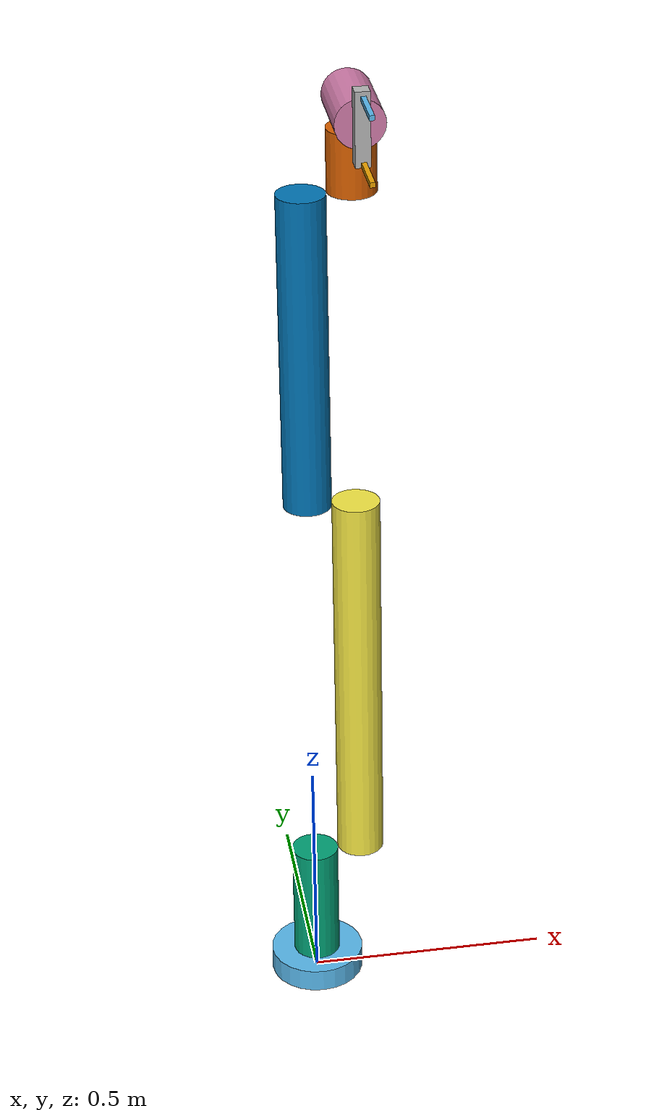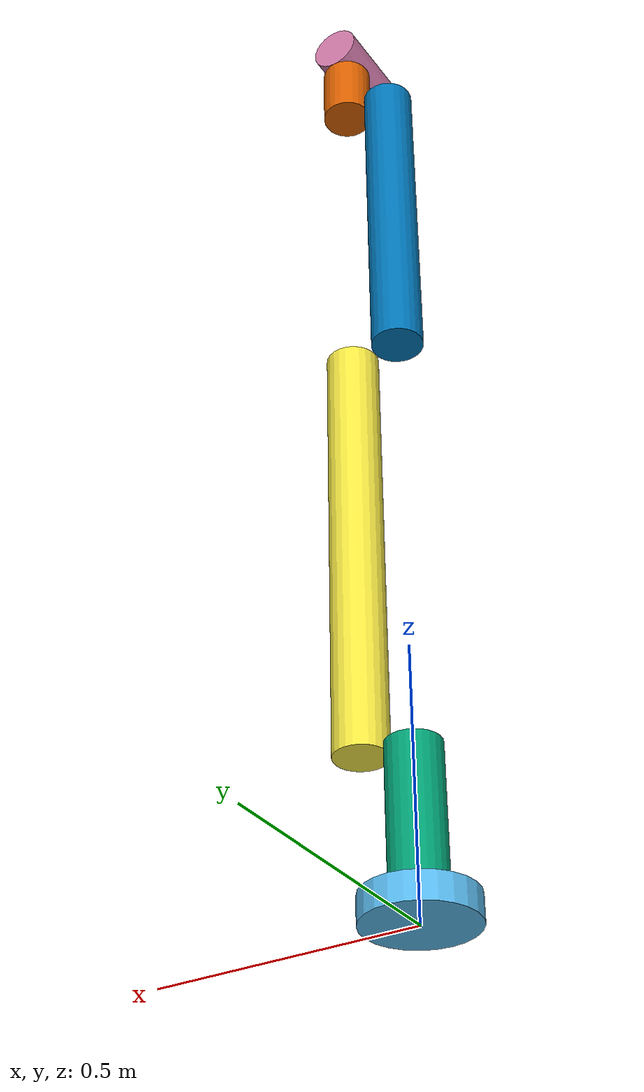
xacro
<?xml version="1.0"?>
<!-- robot_arm.xacro -->
<robot name="robot_arm" xmlns:xacro="http://ros.org/wiki/xacro">
  <xacro:include filename="robot_arm_macros.xacro"/>
  <xacro:include filename="gripper.xacro"/>

  <!-- ====== WORLD LINK ====== -->
  <link name="world"/>

  <!-- ====== FIX ROBOT TO WORLD ====== -->
  <xacro:cobot_joint
    name="world_base_link"
    type="fixed"
    parent="world"
    child="base_link"
    axis="0 0 0"
    limit_l="0"
    limit_u="0"
    limit_v="0"
    limit_e="0"
    origin_xyz="0 0 0"
    origin_rpy="0 0 0"/>

  <!-- ====== ARM LINKS ====== -->

  <!-- Base link -->
  <xacro:link_cylinder
    name="base_link"
    xyz="0 0 0.025"
    rpy="0 0 0"
    radius="0.1"
    length="0.05"
    mass="1.0"
    ixx="0.00270833"
    iyy="0.00270833"
    izz="0.005"/>

  <!-- Link 1 -->
  <xacro:link_cylinder
    name="link1"
    xyz="0 0 0.132"
    rpy="0 0 0"
    radius="0.05"
    length="0.264"
    mass="0.6"
    ixx="0.005808"
    iyy="0.005808"
    izz="0.00075"/>

  <!-- Link 2 -->
  <xacro:link_cylinder
    name="link2"
    xyz="0 0 0.425"
    rpy="0 0 0"
    radius="0.05"
    length="0.850"
    mass="0.7"
    ixx="0.042583"
    iyy="0.042583"
    izz="0.000875"/>

  <!-- Link 3 (commented - uncomment when ready) -->
  <xacro:link_cylinder
    name="link3"
    xyz="0 0 0.340"
    rpy="0 0 0"
    radius="0.05"
    length="0.680"
    mass="0.8"
    ixx="0.038293"
    iyy="0.038293"
    izz="0.001"/>

  <!-- Link 4 (commented - uncomment when ready) -->
  <xacro:link_cylinder
    name="link4"
    xyz="0 0 0.065"
    rpy="0 0 0"
    radius="0.05"
    length="0.130"
    mass="0.5"
    ixx="0.003646"
    iyy="0.003646"
    izz="0.000625"/>

  <!-- Link 5 (commented - uncomment when ready) -->
  <xacro:link_cylinder
    name="link5"
    xyz="0 0 0.035"
    rpy="0 0 0"
    radius="0.05"
    length="0.170"
    mass="0.3"
    ixx="0.00225"
    iyy="0.00225"
    izz="0.000375"/>

  <!-- Gripper (commented - uncomment when ready with link5) -->
  <xacro:gripper_connector_link/>

  <xacro:gripper_right_finger_link/>

  <xacro:gripper_left_finger_link/>

  <!-- ====== ARM JOINTS ====== -->

  <!-- Joint: base_link to link1 -->
  <xacro:cobot_joint
    name="base_link_link1"
    type="revolute"
    parent="base_link"
    child="link1"
    axis="0 0 1"
    limit_l="-3.14159"
    limit_u="3.14159"
    limit_v="0.5"
    limit_e="1000.0"
    origin_xyz="0 0 0.05"
    origin_rpy="0 0 0"/>

  <!-- Joint: link1 to link2 -->
  <xacro:cobot_joint
    name="link1_link2"
    type="revolute"
    parent="link1"
    child="link2"
    axis="1 0 0"
    limit_l="-2.5"
    limit_u="2.5"
    limit_v="0.5"
    limit_e="1000.0"
    origin_xyz="0.1 0 0.264"
    origin_rpy="0 0 0"/>

  <!-- Joint: link2 to link3 (commented - uncomment when ready) -->
  <xacro:cobot_joint
    name="link2_link3"
    type="revolute"
    parent="link2"
    child="link3"
    axis="1 0 0"
    limit_l="-3.14"
    limit_u="3.14"
    limit_v="0.5"
    limit_e="1000.0"
    origin_xyz="-0.1 0 0.850"
    origin_rpy="0 0 0"/>

  <!-- Joint: link3 to link4 (commented - uncomment when ready) -->
  <xacro:cobot_joint
    name="link3_link4"
    type="revolute"
    parent="link3"
    child="link4"
    axis="1 0 0"
    limit_l="-3.14"
    limit_u="3.14"
    limit_v="0.5"
    limit_e="1000.0"
    origin_xyz="0.1 0 0.680"
    origin_rpy="0 0 0"/>

  <!-- Joint: link4 to link5 (commented - uncomment when ready) -->
  <xacro:cobot_joint
    name="link4_link5"
    type="revolute"
    parent="link4"
    child="link5"
    axis="0 1 0"
    limit_l="-3.14"
    limit_u="3.14"
    limit_v="0.5"
    limit_e="1000.0"
    origin_xyz="0 0 0.180"
    origin_rpy="1.57 0 0"/>

  <xacro:gripper_connector_joint parent="link5" origin_xyz="0 0 0.135"/>

  <xacro:gripper_right_finger_joint />

  <xacro:gripper_left_finger_joint />

  <!-- ====== ROS2_CONTROL CONFIGURATION ====== -->
  <ros2_control name="RobotController" type="system">
    <hardware>
      <plugin>gz_ros2_control/GazeboSimSystem</plugin>
    </hardware>

    <!-- Active arm joints -->
    <joint name="base_link_link1">
      <command_interface name="position"/>
      <state_interface name="position"/>
      <state_interface name="velocity"/>
    </joint>

    <joint name="link1_link2">
      <command_interface name="position"/>
      <state_interface name="position"/>
      <state_interface name="velocity"/>
    </joint>

    <!-- Additional joints (uncomment when ready) -->
    <joint name="link2_link3">
      <command_interface name="position"/>
      <state_interface name="position"/>
      <state_interface name="velocity"/>
    </joint>

    <joint name="link3_link4">
      <command_interface name="position"/>
      <state_interface name="position"/>
      <state_interface name="velocity"/>
    </joint>

    <joint name="link4_link5">
      <command_interface name="position"/>
      <state_interface name="position"/>
      <state_interface name="velocity"/>
    </joint>

    <joint name="gripper_connector_joint">
      <command_interface name="position"/>
      <state_interface name="position"/>
      <state_interface name="velocity"/>
    </joint>

    <joint name="gripper_right_joint">
      <command_interface name="position"/>
      <state_interface name="position"/>
      <state_interface name="velocity"/>
    </joint>

    <joint name="gripper_left_joint">
      <command_interface name="position"/>
      <state_interface name="position"/>
      <state_interface name="velocity"/>
    </joint>

  </ros2_control>

  <!-- ====== GAZEBO PLUGIN ====== -->
  <gazebo>
    <plugin name="gz_ros2_control::GazeboSimROS2ControlPlugin" filename="libgz_ros2_control-system.so">
      <parameters>$(find robot_arm)/config/controller.yaml</parameters>
      <controller_manager_name>controller_manager</controller_manager_name>
    </plugin>
  </gazebo>

</robot>

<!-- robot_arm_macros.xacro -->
<!-- robot_arm_macros.xacro -->
<robot xmlns:xacro="http://ros.org/wiki/xacro">

  <!-- ====== CYLINDER LINK MACRO ====== -->
  <xacro:macro name="link_cylinder" params="name xyz rpy radius length mass ixx iyy izz">
    <link name="${name}">
      <inertial>
        <origin xyz="0 0 0" rpy="0 0 0"/>
        <mass value="${mass}"/>
        <inertia
          ixx="${ixx}"
          ixy="0.0"
          ixz="0.0"
          iyy="${iyy}"
          iyz="0.0"
          izz="${izz}"/>
      </inertial>
      <visual>
        <geometry>
          <cylinder radius="${radius}" length="${length}"/>
        </geometry>
        <origin xyz="${xyz}" rpy="${rpy}"/>
      </visual>
      <collision>
        <geometry>
          <cylinder radius="${radius}" length="${length}"/>
        </geometry>
        <origin xyz="${xyz}" rpy="${rpy}"/>
      </collision>
    </link>
  </xacro:macro>

  <!-- ====== BOX LINK MACRO ====== -->
  <xacro:macro name="cobot_link_box" params="name origin_xyz origin_rpy size mass ixx ixy ixz iyy iyz izz">
    <link name="${name}">
      <inertial>
        <origin xyz="0 0 0" rpy="0 0 0"/>
        <mass value="${mass}"/>
        <inertia
          ixx="${ixx}"
          ixy="${ixy}"
          ixz="${ixz}"
          iyy="${iyy}"
          iyz="${iyz}"
          izz="${izz}"/>
      </inertial>
      <visual>
        <geometry>
          <box size="${size}"/>
        </geometry>
        <origin xyz="${origin_xyz}" rpy="${origin_rpy}"/>
      </visual>
      <collision>
        <geometry>
          <box size="${size}"/>
        </geometry>
        <origin xyz="${origin_xyz}" rpy="${origin_rpy}"/>
      </collision>
    </link>
  </xacro:macro>

  <!-- ====== UNIFIED JOINT MACRO ====== -->
  <xacro:macro name="cobot_joint" params="name type parent child axis limit_l limit_u limit_v limit_e origin_xyz origin_rpy">
    <joint name="${name}" type="${type}">
      <parent link="${parent}"/>
      <child link="${child}"/>
      <!-- Only add axis and limit for non-fixed joints -->
      <xacro:if value="${type != 'fixed'}">
        <axis xyz="${axis}"/>
        <limit lower="${limit_l}" upper="${limit_u}" velocity="${limit_v}" effort="${limit_e}"/>
      </xacro:if>
      <origin xyz="${origin_xyz}" rpy="${origin_rpy}"/>
    </joint>
  </xacro:macro>

</robot>

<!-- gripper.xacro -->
<!-- gripper.xacro -->
<robot xmlns:xacro="http://ros.org/wiki/xacro">

  <!-- ========== PLUGIN MACROS ========== -->

  <!-- ====== MIMIC JOINT PLUGIN MACRO ====== -->
  <xacro:macro name="mimic_joint_plugin_gazebo" params="parent_joint mimic_joint has_pid:=false multiplier:=-1.0 offset:=0 sensitiveness:=0.0 max_effort:=200 robot_namespace:='/robot_arm'">
    <gazebo>
      <plugin name="${mimic_joint}_mimic_joint_plugin" filename="libroboticsgroup_gazebo_mimic_joint_plugin.so">
        <joint>${parent_joint}</joint>
        <mimicJoint>${mimic_joint}</mimicJoint>
        <xacro:if value="${has_pid}">
          <hasPID/>
        </xacro:if>
        <multiplier>${multiplier}</multiplier>
        <offset>${offset}</offset>
        <sensitiveness>${sensitiveness}</sensitiveness>
        <maxEffort>${max_effort}</maxEffort>
        <xacro:unless value="${robot_namespace == '/robot_arm'}">
          <robotNamespace>${robot_namespace}</robotNamespace>
        </xacro:unless>
      </plugin>
    </gazebo>
  </xacro:macro>

  <!-- ====== GRASP FIX PLUGIN MACRO ====== -->
  <xacro:macro name="gripper_grasp_fix">
    <gazebo>
      <plugin name="gazebo_grasp_fix" filename="libgazebo_grasp_fix.so">
        <arm>
          <arm_name>gripper</arm_name>
          <palm_link>gripper_connector</palm_link>
          <gripper_link>gripper_right</gripper_link>
          <gripper_link>gripper_left</gripper_link>
        </arm>
        <forces_angle_tolerance>100</forces_angle_tolerance>
        <update_rate>10</update_rate>
        <grip_count_threshold>3</grip_count_threshold>
        <max_grip_count>10</max_grip_count>
        <release_tolerance>0.001</release_tolerance>
        <disable_collision_on_attach>false</disable_collision_on_attach>
        <contact_topic>__default_topic__</contact_topic>
      </plugin>
    </gazebo>
  </xacro:macro>

  <!-- ========== LINK MACROS ========== -->

  <!-- ====== GRIPPER CONNECTOR LINK ====== -->
  <xacro:macro name="gripper_connector_link">
    <xacro:cobot_link_box
      name="gripper_connector"
      origin_xyz="0.0 0.0 0.0"
      origin_rpy="0 0 0"
      size="0.03 0.15 0.03"
      mass="1.0"
      ixx="0.00195"
      ixy="0.0"
      ixz="0.0"
      iyy="0.00195"
      iyz="0.0"
      izz="0.00015"/>
  </xacro:macro>

  <!-- ====== GRIPPER RIGHT FINGER LINK ====== -->
  <xacro:macro name="gripper_right_finger_link">
    <xacro:cobot_link_box
      name="gripper_right"
      origin_xyz="0.0 0.0 0.05"
      origin_rpy="0 0 0"
      size="0.01 0.01 0.1"
      mass="0.5"
      ixx="0.00042"
      ixy="0.0"
      ixz="0.0"
      iyy="0.00042"
      iyz="0.0"
      izz="0.0000083"/>
  </xacro:macro>

  <!-- ====== GRIPPER LEFT FINGER LINK ====== -->
  <xacro:macro name="gripper_left_finger_link">
    <xacro:cobot_link_box
      name="gripper_left"
      origin_xyz="0.0 0.0 0.05"
      origin_rpy="0 0 0"
      size="0.01 0.01 0.1"
      mass="0.5"
      ixx="0.00042"
      ixy="0.0"
      ixz="0.0"
      iyy="0.00042"
      iyz="0.0"
      izz="0.0000083"/>
  </xacro:macro>

  <!-- ========== JOINT MACROS ========== -->

  <!-- ====== CONNECTOR JOINT ====== -->
  <!-- Connects parent link to gripper connector -->
  <xacro:macro name="gripper_connector_joint" params="parent origin_xyz">
    <joint name="gripper_connector_joint" type="revolute">
      <parent link="${parent}"/>
      <child link="gripper_connector"/>
      <axis xyz="0 0 1"/>
      <limit lower="-3.14" upper="3.14" velocity="0.5" effort="200"/>
      <origin xyz="${origin_xyz}" rpy="0 0 0"/>
      <dynamics damping="1" friction="1"/>
    </joint>
  </xacro:macro>

  <!-- ====== RIGHT FINGER JOINT ====== -->
  <!-- Prismatic joint for right finger (opens/closes) -->
  <xacro:macro name="gripper_right_finger_joint">
    <joint name="gripper_right_joint" type="prismatic">
      <parent link="gripper_connector"/>
      <child link="gripper_right"/>
      <axis xyz="0 1 0"/>
      <limit lower="-0.1" upper="0.055" velocity="0.5" effort="200"/>
      <origin xyz="0 -0.065 0.025" rpy="0 0 0"/>
      <dynamics damping="1" friction="2"/>
    </joint>
  </xacro:macro>

  <!-- ====== LEFT FINGER JOINT ====== -->
  <!-- Prismatic joint for left finger (opens/closes) -->
  <xacro:macro name="gripper_left_finger_joint">
    <joint name="gripper_left_joint" type="prismatic">
      <parent link="gripper_connector"/>
      <child link="gripper_left"/>
      <axis xyz="0 -1 0"/>
      <limit lower="-0.1" upper="0.055" velocity="0.5" effort="200"/>
      <origin xyz="0 0.065 0.025" rpy="0 0 0"/>
      <dynamics damping="1" friction="2"/>
    </joint>
  </xacro:macro>

</robot>
